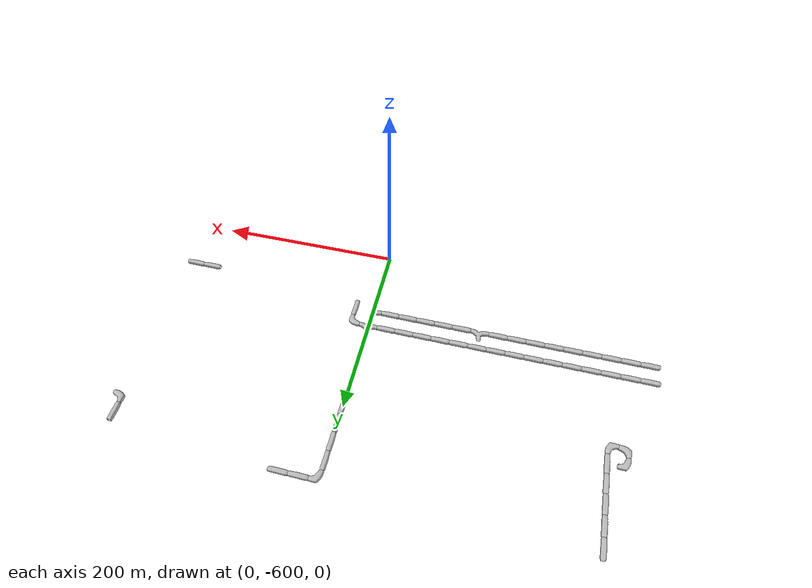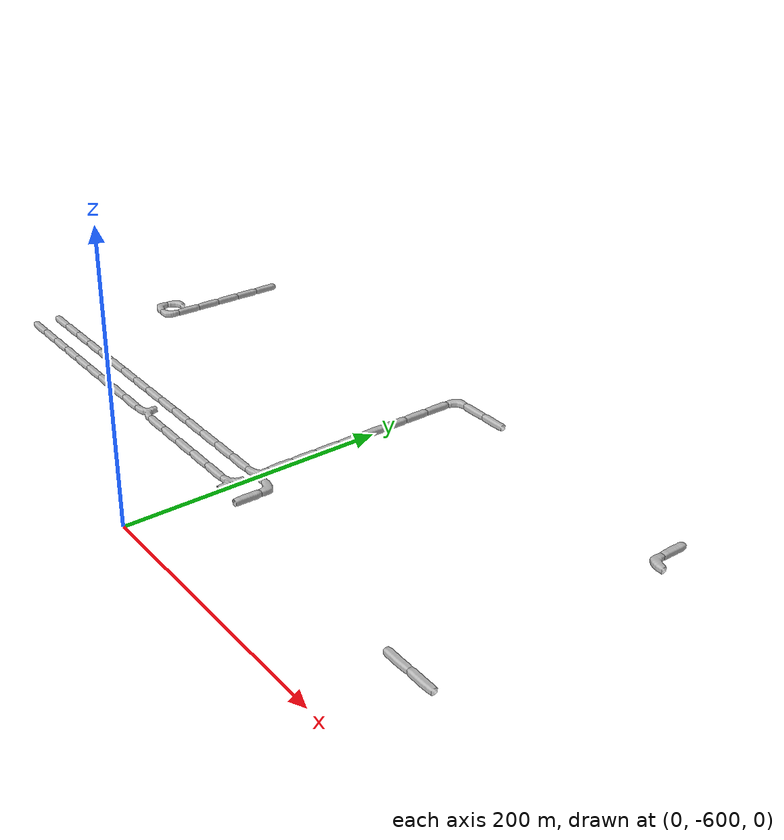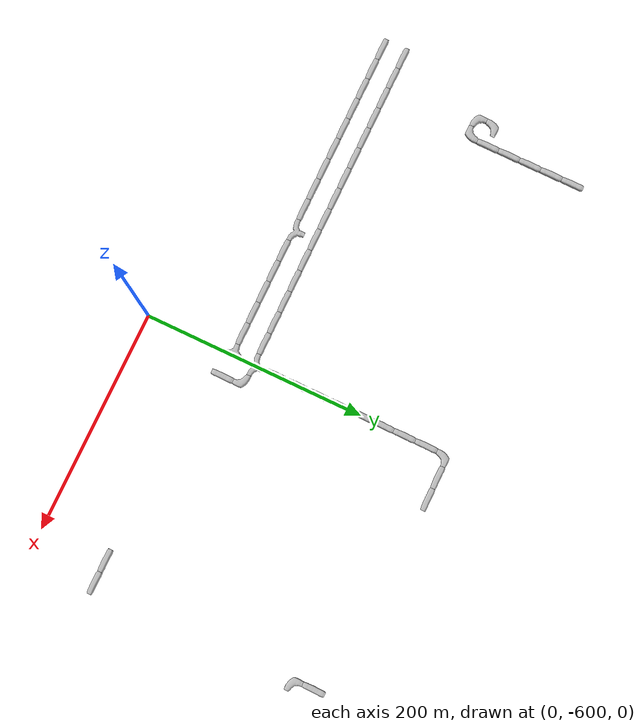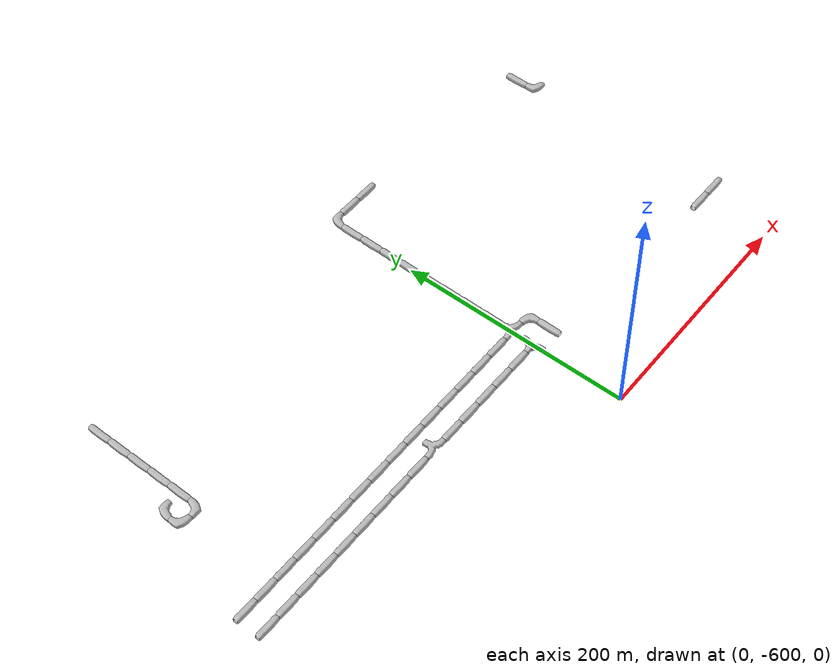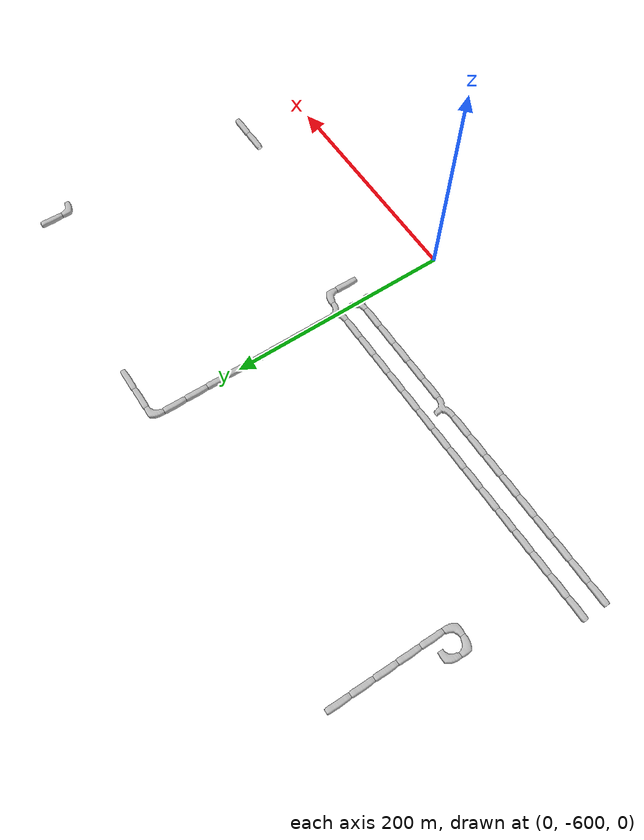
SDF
<sdf version="1.6">
 <world name="cave_32000_64">
  <include>
   <static>true</static>
   <name>cave_-13_-16</name>
   <pose>-260 -320 0 0 0 0.0</pose>
   <uri>model://cave_straight_20m</uri>
  </include>
  <include>
   <static>true</static>
   <name>cave_-13_-17</name>
   <pose>-260 -340 0 0 0 0.0</pose>
   <uri>model://cave_straight_20m</uri>
  </include>
  <include>
   <static>true</static>
   <name>cave_-13_-18</name>
   <pose>-260 -360 0 0 0 0.0</pose>
   <uri>model://cave_straight_20m</uri>
  </include>
  <include>
   <static>true</static>
   <name>cave_-13_-19</name>
   <pose>-260 -380 0 0 0 0.0</pose>
   <uri>model://cave_straight_20m</uri>
  </include>
  <include>
   <static>true</static>
   <name>cave_-13_-20</name>
   <pose>-260 -400 0 0 0 0.0</pose>
   <uri>model://cave_straight_20m</uri>
  </include>
  <include>
   <static>true</static>
   <name>cave_-13_-21</name>
   <pose>-260 -420 0 0 0 1.5707963267948966</pose>
   <uri>model://cave_L_20m</uri>
  </include>
  <include>
   <static>true</static>
   <name>cave_-14_-21</name>
   <pose>-280 -420 0 0 0 0.0</pose>
   <uri>model://cave_L_20m</uri>
  </include>
  <include>
   <static>true</static>
   <name>cave_-14_-20</name>
   <pose>-280 -400 0 0 0 -1.5707963267948966</pose>
   <uri>model://cave_L_20m</uri>
  </include>
  <include>
   <static>true</static>
   <name>cave_-15_-25</name>
   <pose>-300 -500 0 0 0 1.5707963267948966</pose>
   <uri>model://cave_straight_20m</uri>
  </include>
  <include>
   <static>true</static>
   <name>cave_-14_-25</name>
   <pose>-280 -500 0 0 0 1.5707963267948966</pose>
   <uri>model://cave_straight_20m</uri>
  </include>
  <include>
   <static>true</static>
   <name>cave_-13_-25</name>
   <pose>-260 -500 0 0 0 1.5707963267948966</pose>
   <uri>model://cave_straight_20m</uri>
  </include>
  <include>
   <static>true</static>
   <name>cave_-12_-25</name>
   <pose>-240 -500 0 0 0 1.5707963267948966</pose>
   <uri>model://cave_straight_20m</uri>
  </include>
  <include>
   <static>true</static>
   <name>cave_-11_-25</name>
   <pose>-220 -500 0 0 0 1.5707963267948966</pose>
   <uri>model://cave_straight_20m</uri>
  </include>
  <include>
   <static>true</static>
   <name>cave_-10_-25</name>
   <pose>-200 -500 0 0 0 1.5707963267948966</pose>
   <uri>model://cave_straight_20m</uri>
  </include>
  <include>
   <static>true</static>
   <name>cave_-9_-25</name>
   <pose>-180 -500 0 0 0 1.5707963267948966</pose>
   <uri>model://cave_straight_20m</uri>
  </include>
  <include>
   <static>true</static>
   <name>cave_-8_-25</name>
   <pose>-160 -500 0 0 0 1.5707963267948966</pose>
   <uri>model://cave_straight_20m</uri>
  </include>
  <include>
   <static>true</static>
   <name>cave_-7_-25</name>
   <pose>-140 -500 0 0 0 1.5707963267948966</pose>
   <uri>model://cave_straight_20m</uri>
  </include>
  <include>
   <static>true</static>
   <name>cave_-6_-25</name>
   <pose>-120 -500 0 0 0 1.5707963267948966</pose>
   <uri>model://cave_straight_20m</uri>
  </include>
  <include>
   <static>true</static>
   <name>cave_-5_-25</name>
   <pose>-100 -500 0 0 0 1.5707963267948966</pose>
   <uri>model://cave_straight_20m</uri>
  </include>
  <include>
   <static>true</static>
   <name>cave_-4_-25</name>
   <pose>-80 -500 0 0 0 1.5707963267948966</pose>
   <uri>model://cave_straight_20m</uri>
  </include>
  <include>
   <static>true</static>
   <name>cave_-3_-25</name>
   <pose>-60 -500 0 0 0 1.5707963267948966</pose>
   <uri>model://cave_straight_20m</uri>
  </include>
  <include>
   <static>true</static>
   <name>cave_-2_-25</name>
   <pose>-40 -500 0 0 0 1.5707963267948966</pose>
   <uri>model://cave_straight_20m</uri>
  </include>
  <include>
   <static>true</static>
   <name>cave_-1_-25</name>
   <pose>-20 -500 0 0 0 1.5707963267948966</pose>
   <uri>model://cave_straight_20m</uri>
  </include>
  <include>
   <static>true</static>
   <name>cave_0_-25</name>
   <pose>0 -500 0 0 0 0.0</pose>
   <uri>model://cave_3way_20m</uri>
  </include>
  <include>
   <static>true</static>
   <name>cave_1_-25</name>
   <pose>20 -500 0 0 0 3.141592653589793</pose>
   <uri>model://cave_L_20m</uri>
  </include>
  <include>
   <static>true</static>
   <name>cave_1_-26</name>
   <pose>20 -520 0 0 0 0.0</pose>
   <uri>model://cave_straight_20m</uri>
  </include>
  <include>
   <static>true</static>
   <name>cave_10_-27</name>
   <pose>200 -540 0 0 0 1.5707963267948966</pose>
   <uri>model://cave_straight_20m</uri>
  </include>
  <include>
   <static>true</static>
   <name>cave_11_-27</name>
   <pose>220 -540 0 0 0 1.5707963267948966</pose>
   <uri>model://cave_straight_20m</uri>
  </include>
  <include>
   <static>true</static>
   <name>cave_0_-26</name>
   <pose>0 -520 0 0 0 1.5707963267948966</pose>
   <uri>model://cave_3way_20m</uri>
  </include>
  <include>
   <static>true</static>
   <name>cave_-1_-26</name>
   <pose>-20 -520 0 0 0 1.5707963267948966</pose>
   <uri>model://cave_straight_20m</uri>
  </include>
  <include>
   <static>true</static>
   <name>cave_-2_-26</name>
   <pose>-40 -520 0 0 0 1.5707963267948966</pose>
   <uri>model://cave_straight_20m</uri>
  </include>
  <include>
   <static>true</static>
   <name>cave_-3_-26</name>
   <pose>-60 -520 0 0 0 1.5707963267948966</pose>
   <uri>model://cave_straight_20m</uri>
  </include>
  <include>
   <static>true</static>
   <name>cave_-4_-26</name>
   <pose>-80 -520 0 0 0 1.5707963267948966</pose>
   <uri>model://cave_straight_20m</uri>
  </include>
  <include>
   <static>true</static>
   <name>cave_-5_-26</name>
   <pose>-100 -520 0 0 0 1.5707963267948966</pose>
   <uri>model://cave_straight_20m</uri>
  </include>
  <include>
   <static>true</static>
   <name>cave_-6_-26</name>
   <pose>-120 -520 0 0 0 0.0</pose>
   <uri>model://cave_3way_20m</uri>
  </include>
  <include>
   <static>true</static>
   <name>cave_-7_-26</name>
   <pose>-140 -520 0 0 0 1.5707963267948966</pose>
   <uri>model://cave_straight_20m</uri>
  </include>
  <include>
   <static>true</static>
   <name>cave_-8_-26</name>
   <pose>-160 -520 0 0 0 1.5707963267948966</pose>
   <uri>model://cave_straight_20m</uri>
  </include>
  <include>
   <static>true</static>
   <name>cave_-9_-26</name>
   <pose>-180 -520 0 0 0 1.5707963267948966</pose>
   <uri>model://cave_straight_20m</uri>
  </include>
  <include>
   <static>true</static>
   <name>cave_-10_-26</name>
   <pose>-200 -520 0 0 0 1.5707963267948966</pose>
   <uri>model://cave_straight_20m</uri>
  </include>
  <include>
   <static>true</static>
   <name>cave_-11_-26</name>
   <pose>-220 -520 0 0 0 1.5707963267948966</pose>
   <uri>model://cave_straight_20m</uri>
  </include>
  <include>
   <static>true</static>
   <name>cave_-12_-26</name>
   <pose>-240 -520 0 0 0 1.5707963267948966</pose>
   <uri>model://cave_straight_20m</uri>
  </include>
  <include>
   <static>true</static>
   <name>cave_-13_-26</name>
   <pose>-260 -520 0 0 0 1.5707963267948966</pose>
   <uri>model://cave_straight_20m</uri>
  </include>
  <include>
   <static>true</static>
   <name>cave_-14_-26</name>
   <pose>-280 -520 0 0 0 1.5707963267948966</pose>
   <uri>model://cave_straight_20m</uri>
  </include>
  <include>
   <static>true</static>
   <name>cave_-15_-26</name>
   <pose>-300 -520 0 0 0 1.5707963267948966</pose>
   <uri>model://cave_straight_20m</uri>
  </include>
  <include>
   <static>true</static>
   <name>cave_0_-24</name>
   <pose>0 -480 0 0 0 0.0</pose>
   <uri>model://cave_straight_20m</uri>
  </include>
  <include>
   <static>true</static>
   <name>cave_0_-23</name>
   <pose>0 -460 0 0 0 0.0</pose>
   <uri>model://cave_straight_20m</uri>
  </include>
  <include>
   <static>true</static>
   <name>cave_0_-22</name>
   <pose>0 -440 0 0 0 0.0</pose>
   <uri>model://cave_straight_20m</uri>
  </include>
  <include>
   <static>true</static>
   <name>cave_0_-21</name>
   <pose>0 -420 0 0 0 0.0</pose>
   <uri>model://cave_straight_20m</uri>
  </include>
  <include>
   <static>true</static>
   <name>cave_0_-20</name>
   <pose>0 -400 0 0 0 0.0</pose>
   <uri>model://cave_straight_20m</uri>
  </include>
  <include>
   <static>true</static>
   <name>cave_0_-19</name>
   <pose>0 -380 0 0 0 0.0</pose>
   <uri>model://cave_straight_20m</uri>
  </include>
  <include>
   <static>true</static>
   <name>cave_0_-18</name>
   <pose>0 -360 0 0 0 0.0</pose>
   <uri>model://cave_straight_20m</uri>
  </include>
  <include>
   <static>true</static>
   <name>cave_0_-17</name>
   <pose>0 -340 0 0 0 0.0</pose>
   <uri>model://cave_straight_20m</uri>
  </include>
  <include>
   <static>true</static>
   <name>cave_0_-16</name>
   <pose>0 -320 0 0 0 -1.5707963267948966</pose>
   <uri>model://cave_L_20m</uri>
  </include>
  <include>
   <static>true</static>
   <name>cave_1_-16</name>
   <pose>20 -320 0 0 0 1.5707963267948966</pose>
   <uri>model://cave_straight_20m</uri>
  </include>
  <include>
   <static>true</static>
   <name>cave_2_-16</name>
   <pose>40 -320 0 0 0 1.5707963267948966</pose>
   <uri>model://cave_straight_20m</uri>
  </include>
  <include>
   <static>true</static>
   <name>cave_11_-17</name>
   <pose>220 -340 0 0 0 0.0</pose>
   <uri>model://cave_straight_20m</uri>
  </include>
  <include>
   <static>true</static>
   <name>cave_11_-18</name>
   <pose>220 -360 0 0 0 0.0</pose>
   <uri>model://cave_L_20m</uri>
  </include>
 </world>
</sdf>
